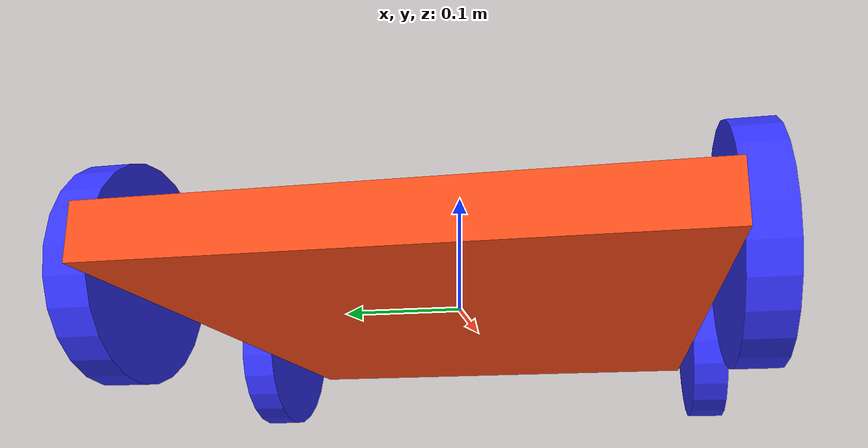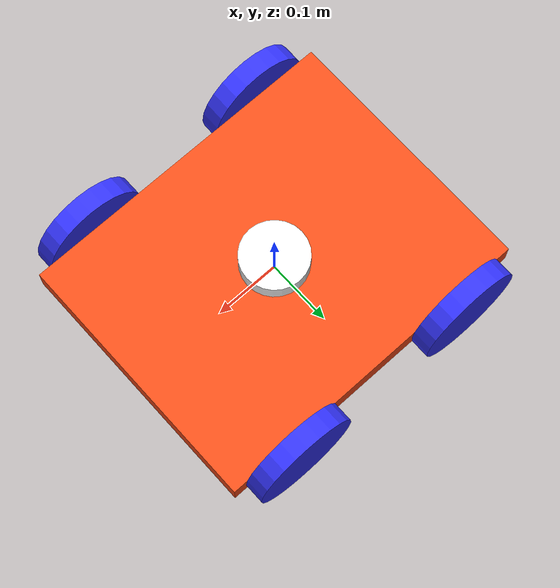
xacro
<?xml version="1.0"?>
<robot xmlns:xacro="http://www.ros.org/wiki/xacro" >

    <xacro:include filename="inertial_macros.xacro"/>

    <xacro:property name="chassis_length" value="0.5"/>
    <xacro:property name="chassis_width" value="0.4"/>
    <xacro:property name="chassis_height" value="0.04"/>
    <xacro:property name="chassis_mass" value="10.0"/>
    <xacro:property name="wheel_radius" value="0.08"/>
    <xacro:property name="wheel_thickness" value="0.03"/>
    <xacro:property name="wheel_mass" value="0.05"/>
    <xacro:property name="lidar_height" value="0.03"/>
    <xacro:property name="lidar_radius" value="0.05"/>
    <xacro:property name="lidar_mass" value="0.2"/>

    <material name="white">
        <color rgba="1 1 1 1" />
    </material>

    <material name="orange">
        <color rgba="1 0.3 0.1 1"/>
    </material>

    <material name="blue">
        <color rgba="0.2 0.2 1 1"/>
    </material>

    <material name="black">
        <color rgba="0 0 0 1"/>
    </material>

    <material name="red">
        <color rgba="1 0 0 1"/>
    </material>

    <!-- BASE LINK -->

    <link name="base_link">

    </link>

    <!-- BASE_FOOTPRINT LINK -->

    <joint name="base_footprint_joint" type="fixed">
        <parent link="base_link"/>
        <child link="base_footprint"/>
        <origin xyz="0 0 0" rpy="0 0 0"/>
    </joint>

    <link name="base_footprint">
    </link>

    <!-- CHASSIS LINK -->

    <joint name="chassis_joint" type="fixed">
        <parent link="base_link"/>
        <child link="chassis"/>
        <origin xyz="0 0 0"/>
    </joint>

    <link name="chassis">
        <visual>
            <origin xyz="0 0 0"/>
            <geometry>
                <box size="${chassis_length} ${chassis_width} ${chassis_height}"/>
            </geometry>
            <material name="orange"/>
        </visual>
        <collision>
            <origin xyz="0 0 0"/>
            <geometry>
                <box size="${chassis_length} ${chassis_width} ${chassis_height}"/>
            </geometry>
        </collision>
        <xacro:inertial_box mass="${chassis_mass}" x="${chassis_length}" y="${chassis_width}" z="${chassis_height}">
            <origin xyz="0 0 0" rpy="0 0 0"/>
        </xacro:inertial_box>
    </link>

    <gazebo reference="chassis">
        <material>Gazebo/Orange</material>
    </gazebo>

        <!-- LIDAR LINK -->

    <joint name="lidar_joint" type="fixed">
        <parent link="chassis"/>
        <child link="lidar"/>
        <origin xyz="0 0 ${chassis_height/2+lidar_height/2}"/>
    </joint>

    <link name="lidar">
        <visual>
            <origin xyz="0 0 0"/>
            <geometry>
                <cylinder radius="${lidar_radius}" length="${lidar_height}"/>
            </geometry>
            <material name="white"/>
        </visual>
        <collision>
            <origin xyz="0 0 0"/>
            <geometry>
                <cylinder radius="${lidar_radius}" length="${lidar_height}"/>
            </geometry>
        </collision>
        <xacro:inertial_cylinder mass="${lidar_mass}" length="${lidar_height}" radius="${lidar_radius}">
            <origin xyz="0 0 0" rpy="0 0 0"/>
        </xacro:inertial_cylinder>
    </link>

    <gazebo reference="chassis">
        <material>Gazebo/Orange</material>
    </gazebo>

    <!-- LEFT WHEEL LINK ANTERIORE -->

    <joint name="left_wheel_joint" type="continuous">
        <parent link="base_link"/>
        <child link="left_wheel"/>
        <origin xyz="0.15 ${chassis_width/2+wheel_thickness/2} 0" rpy="-${pi/2} 0 0" />
        <axis xyz="0 0 1"/>
    </joint>

    <link name="left_wheel">
        <visual>
            <geometry>
                <cylinder radius="${wheel_radius}" length="${wheel_thickness}"/>
            </geometry>
            <material name="blue"/>
        </visual>
        <collision>
            <geometry>
                <sphere radius="${wheel_radius}"/>
            </geometry>
        </collision>
        <xacro:inertial_cylinder mass="${wheel_mass}" length="${wheel_thickness}" radius="${wheel_radius}">
            <origin xyz="0 0 0" rpy="0 0 0"/>
        </xacro:inertial_cylinder>
    </link>

    <gazebo reference="left_wheel">
        <material>Gazebo/Blue</material>
    </gazebo>

    <!-- RIGHT WHEEL LINK ANTERIORE -->

    <joint name="right_wheel_joint" type="continuous">
        <parent link="base_link"/>
        <child link="right_wheel"/>
        <origin xyz="0.15 ${-chassis_width/2-wheel_thickness/2} 0" rpy="${pi/2} 0 0" />
        <axis xyz="0 0 -1"/>
    </joint>

    <link name="right_wheel">
        <visual>
            <geometry>
                <cylinder radius="${wheel_radius}" length="${wheel_thickness}"/>
            </geometry>
            <material name="blue"/>
        </visual>
        <collision>
            <geometry>
                <sphere radius="${wheel_radius}"/>
            </geometry>
        </collision>
        <xacro:inertial_cylinder mass="${wheel_mass}" length="${wheel_thickness}" radius="${wheel_radius}">
            <origin xyz="0 0 0" rpy="0 0 0"/>
        </xacro:inertial_cylinder>
    </link>

    <gazebo reference="right_wheel">
        <material>Gazebo/Blue</material>
    </gazebo>

        <!-- LEFT WHEEL LINK POSTERIORE -->

    <joint name="left_wheel_p_joint" type="continuous">
        <parent link="base_link"/>
        <child link="left_wheel_p"/>
        <origin xyz="-0.15 ${chassis_width/2+wheel_thickness/2} 0" rpy="-${pi/2} 0 0" />
        <axis xyz="0 0 1"/>
    </joint>

    <link name="left_wheel_p">
        <visual>
            <geometry>
                <cylinder radius="${wheel_radius}" length="${wheel_thickness}"/>
            </geometry>
            <material name="blue"/>
        </visual>
        <collision>
            <geometry>
                <sphere radius="${wheel_radius}"/>
            </geometry>
        </collision>
        <xacro:inertial_cylinder mass="${wheel_mass}" length="${wheel_thickness}" radius="${wheel_radius}">
            <origin xyz="0 0 0" rpy="0 0 0"/>
        </xacro:inertial_cylinder>
    </link>

    <gazebo reference="left_wheel_p">
        <material>Gazebo/Blue</material>
    </gazebo>

    <!-- RIGHT WHEEL LINK POSTERIORE -->

    <joint name="right_wheel_p_joint" type="continuous">
        <parent link="base_link"/>
        <child link="right_wheel_p"/>
        <origin xyz="-0.15 ${-chassis_width/2-wheel_thickness/2} 0" rpy="${pi/2} 0 0" />
        <axis xyz="0 0 -1"/>
    </joint>

    <link name="right_wheel_p">
        <visual>
            <geometry>
                <cylinder radius="${wheel_radius}" length="${wheel_thickness}"/>
            </geometry>
            <material name="blue"/>
        </visual>
        <collision>
            <geometry>
                <sphere radius="${wheel_radius}"/>
            </geometry>
        </collision>
        <xacro:inertial_cylinder mass="${wheel_mass}" length="${wheel_thickness}" radius="${wheel_radius}">
            <origin xyz="0 0 0" rpy="0 0 0"/>
        </xacro:inertial_cylinder>
    </link>

    <gazebo reference="right_wheel_p">
        <material>Gazebo/Blue</material>
    </gazebo>

</robot>
